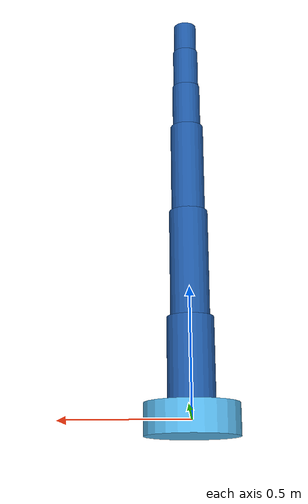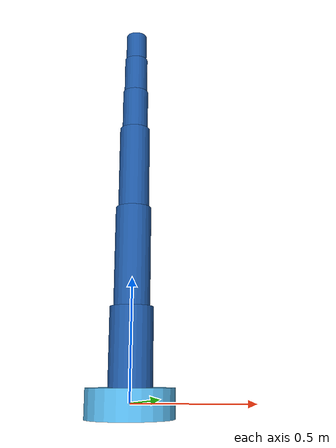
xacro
<?xml version="1.0"?>
<robot xmlns:xacro="http://www.ros.org/wiki/xacro" name="reference_robot">
  <!-- Deterministic internal reference model; not a manufacturer accuracy claim. -->
  <xacro:macro name="link_with_collision" params="name length radius">
    <link name="${name}">
      <visual>
        <origin xyz="0 0 ${length / 2}"/>
        <geometry><cylinder length="${length}" radius="${radius}"/></geometry>
        <material name="cellforge_blue"><color rgba="0.12 0.35 0.65 1"/></material>
      </visual>
      <collision>
        <origin xyz="0 0 ${length / 2}"/>
        <geometry><cylinder length="${length}" radius="${radius}"/></geometry>
      </collision>
      <inertial>
        <origin xyz="0 0 ${length / 2}"/>
        <mass value="1.0"/>
        <inertia ixx="0.01" ixy="0" ixz="0" iyy="0.01" iyz="0" izz="0.01"/>
      </inertial>
    </link>
  </xacro:macro>

  <link name="world"/>
  <link name="base_link">
    <visual><geometry><cylinder length="0.12" radius="0.18"/></geometry></visual>
    <collision><geometry><cylinder length="0.12" radius="0.18"/></geometry></collision>
  </link>
  <joint name="world_joint" type="fixed">
    <parent link="world"/><child link="base_link"/>
  </joint>

  <xacro:link_with_collision name="link_1" length="0.32" radius="0.09"/>
  <xacro:link_with_collision name="link_2" length="0.42" radius="0.075"/>
  <xacro:link_with_collision name="link_3" length="0.36" radius="0.065"/>
  <xacro:link_with_collision name="link_4" length="0.18" radius="0.055"/>
  <xacro:link_with_collision name="link_5" length="0.16" radius="0.05"/>
  <xacro:link_with_collision name="link_6" length="0.12" radius="0.045"/>
  <link name="tool0"/>

  <joint name="joint_1" type="revolute">
    <parent link="base_link"/><child link="link_1"/>
    <origin xyz="0 0 0.06"/><axis xyz="0 0 1"/><limit lower="-3.14159" upper="3.14159" effort="150" velocity="1.5"/>
  </joint>
  <joint name="joint_2" type="revolute">
    <parent link="link_1"/><child link="link_2"/>
    <origin xyz="0 0 0.32"/><axis xyz="0 1 0"/><limit lower="-2.4" upper="2.4" effort="150" velocity="1.5"/>
  </joint>
  <joint name="joint_3" type="revolute">
    <parent link="link_2"/><child link="link_3"/>
    <origin xyz="0 0 0.42"/><axis xyz="0 1 0"/><limit lower="-2.8" upper="2.8" effort="120" velocity="1.8"/>
  </joint>
  <joint name="joint_4" type="revolute">
    <parent link="link_3"/><child link="link_4"/>
    <origin xyz="0 0 0.36"/><axis xyz="1 0 0"/><limit lower="-3.14159" upper="3.14159" effort="80" velocity="2.2"/>
  </joint>
  <joint name="joint_5" type="revolute">
    <parent link="link_4"/><child link="link_5"/>
    <origin xyz="0 0 0.18"/><axis xyz="0 1 0"/><limit lower="-2.4" upper="2.4" effort="60" velocity="2.2"/>
  </joint>
  <joint name="joint_6" type="revolute">
    <parent link="link_5"/><child link="link_6"/>
    <origin xyz="0 0 0.16"/><axis xyz="1 0 0"/><limit lower="-3.14159" upper="3.14159" effort="40" velocity="2.8"/>
  </joint>
  <joint name="tool0_joint" type="fixed">
    <parent link="link_6"/><child link="tool0"/><origin xyz="0 0 0.12"/>
  </joint>

  <ros2_control name="ReferenceRobotSystem" type="system">
    <hardware><plugin>mock_components/GenericSystem</plugin></hardware>
    <xacro:macro name="controlled_joint" params="name">
      <joint name="${name}">
        <command_interface name="position"/>
        <state_interface name="position"><param name="initial_value">0.0</param></state_interface>
        <state_interface name="velocity"/>
      </joint>
    </xacro:macro>
    <xacro:controlled_joint name="joint_1"/><xacro:controlled_joint name="joint_2"/>
    <xacro:controlled_joint name="joint_3"/><xacro:controlled_joint name="joint_4"/>
    <xacro:controlled_joint name="joint_5"/><xacro:controlled_joint name="joint_6"/>
  </ros2_control>
</robot>
